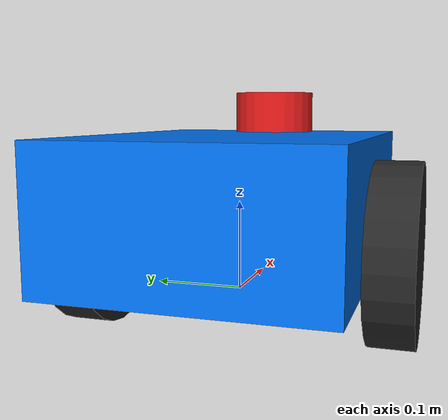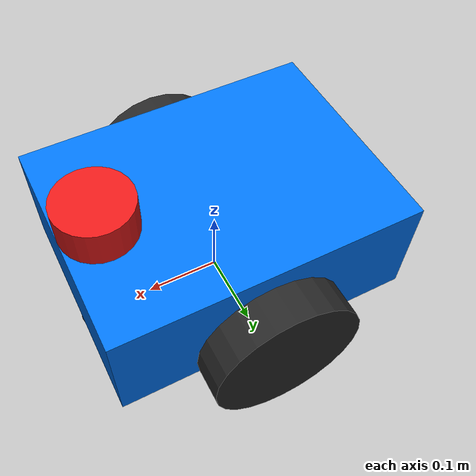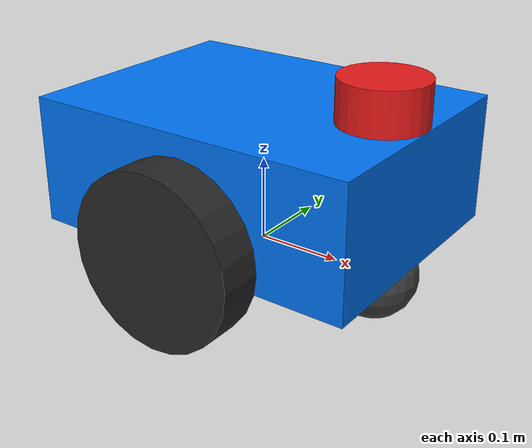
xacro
<?xml version="1.0"?>
<robot name="explore_bot" xmlns:xacro="http://ros.org/wiki/xacro">

  <!-- Argument passed from the launch file (e.g., robot1, robot2) -->
  <xacro:arg name="robot_name" default="robot1"/>
  <xacro:property name="prefix" value="$(arg robot_name)/" />

  <!-- Robot-specific chassis color -->
  <xacro:if value="${'$(arg robot_name)' == 'robot1'}">
    <xacro:property name="body_rgba" value="0.0 0.45 0.95 1.0" />  <!-- Vibrant Blue for Robot 1 -->
    <xacro:property name="gazebo_color" value="Gazebo/Blue" />
  </xacro:if>
  <xacro:unless value="${'$(arg robot_name)' == 'robot1'}">
    <xacro:property name="body_rgba" value="0.95 0.4 0.05 1.0" />  <!-- Vibrant Orange for Robot 2 -->
    <xacro:property name="gazebo_color" value="Gazebo/Orange" />
  </xacro:unless>

  <!-- 1. BASE GEOMETRY & FRAMES                      -->
  <link name="${prefix}base_footprint"/>

  <joint name="${prefix}base_joint" type="fixed">
    <parent link="${prefix}base_footprint"/>
    <child link="${prefix}base_link"/>
    <origin xyz="0 0 0.1" rpy="0 0 0"/>
  </joint>

  <link name="${prefix}base_link">
    <visual>
      <geometry><box size="0.4 0.3 0.15"/></geometry>
      <material name="${prefix}body_mat">
        <color rgba="${body_rgba}"/>
      </material>
    </visual>
    <collision>
      <geometry><box size="0.4 0.3 0.15"/></geometry>
    </collision>
    <inertial>
      <mass value="5.0"/>
      <inertia ixx="0.05" ixy="0.0" ixz="0.0" iyy="0.08" iyz="0.0" izz="0.1"/>
    </inertial>
  </link>

  <!-- 2. WHEELS                                      -->
  <!-- Left Wheel -->
  <link name="${prefix}left_wheel">
    <visual>
      <geometry><cylinder radius="0.1" length="0.05"/></geometry>
      <material name="${prefix}wheel_mat">
        <color rgba="0.15 0.15 0.15 1.0"/>
      </material>
    </visual>
    <collision><geometry><cylinder radius="0.1" length="0.05"/></geometry></collision>
    <inertial><mass value="0.5"/><inertia ixx="0.001" ixy="0" ixz="0" iyy="0.001" iyz="0" izz="0.002"/></inertial>
  </link>
  <joint name="${prefix}left_wheel_joint" type="continuous">
    <parent link="${prefix}base_link"/>
    <child link="${prefix}left_wheel"/>
    <origin xyz="0 0.175 -0.05" rpy="-1.5707 0 0"/>
    <axis xyz="0 0 1"/>
  </joint>

  <!-- Right Wheel -->
  <link name="${prefix}right_wheel">
    <visual>
      <geometry><cylinder radius="0.1" length="0.05"/></geometry>
      <material name="${prefix}wheel_mat">
        <color rgba="0.15 0.15 0.15 1.0"/>
      </material>
    </visual>
    <collision><geometry><cylinder radius="0.1" length="0.05"/></geometry></collision>
    <inertial><mass value="0.5"/><inertia ixx="0.001" ixy="0" ixz="0" iyy="0.001" iyz="0" izz="0.002"/></inertial>
  </link>
  <joint name="${prefix}right_wheel_joint" type="continuous">
    <parent link="${prefix}base_link"/>
    <child link="${prefix}right_wheel"/>
    <origin xyz="0 -0.175 -0.05" rpy="-1.5707 0 0"/>
    <axis xyz="0 0 1"/>
  </joint>

  <!-- Caster Wheel -->
  <link name="${prefix}caster_wheel">
    <visual>
      <geometry><sphere radius="0.05"/></geometry>
      <material name="${prefix}caster_mat">
        <color rgba="0.25 0.25 0.25 1.0"/>
      </material>
    </visual>
    <collision><geometry><sphere radius="0.05"/></geometry></collision>
    <inertial><mass value="0.1"/><inertia ixx="0.0001" ixy="0" ixz="0" iyy="0.0001" iyz="0" izz="0.0001"/></inertial>
  </link>
  <joint name="${prefix}caster_joint" type="fixed">
    <parent link="${prefix}base_link"/>
    <child link="${prefix}caster_wheel"/>
    <origin xyz="0.15 0 -0.1" rpy="0 0 0"/>
  </joint>

  <!-- 3. LIDAR SENSOR                                -->
  <link name="${prefix}lidar_link">
    <visual>
      <geometry><cylinder radius="0.05" length="0.05"/></geometry>
      <material name="${prefix}lidar_mat">
        <color rgba="0.9 0.1 0.1 1.0"/>
      </material>
    </visual>
  </link>
  <joint name="${prefix}lidar_joint" type="fixed">
    <parent link="${prefix}base_link"/>
    <child link="${prefix}lidar_link"/>
    <origin xyz="0.15 0 0.1" rpy="0 0 0"/>
  </joint>

  <!-- 4. GAZEBO PLUGINS (The critical multi-agent part)-->
  <gazebo>
    <plugin name="$(arg robot_name)_diff_drive" filename="libgazebo_ros_diff_drive.so">
      <ros>
        <namespace>/$(arg robot_name)</namespace>
        <!-- Keep every robot's prefixed frames on the global TF graph. -->
        <remapping>tf:=/tf</remapping>
        <remapping>tf_static:=/tf_static</remapping>
      </ros>
      <update_rate>30</update_rate>
      <left_joint>${prefix}left_wheel_joint</left_joint>
      <right_joint>${prefix}right_wheel_joint</right_joint>
      <wheel_separation>0.35</wheel_separation>
      <wheel_diameter>0.2</wheel_diameter>

      <!-- TF Frames: This ensures odom and base_footprint belong to this specific bot -->
      <odometry_frame>${prefix}odom</odometry_frame>
      <robot_base_frame>${prefix}base_footprint</robot_base_frame>

      <publish_odom>true</publish_odom>
      <publish_odom_tf>true</publish_odom_tf>
      <publish_wheel_tf>false</publish_wheel_tf>
    </plugin>
  </gazebo>

  <gazebo>
    <plugin name="$(arg robot_name)_joint_state" filename="libgazebo_ros_joint_state_publisher.so">
      <ros>
        <namespace>/$(arg robot_name)</namespace>
      </ros>
      <update_rate>30</update_rate>
      <joint_name>${prefix}left_wheel_joint</joint_name>
      <joint_name>${prefix}right_wheel_joint</joint_name>
    </plugin>
  </gazebo>

  <gazebo reference="${prefix}lidar_link">
    <sensor type="ray" name="$(arg robot_name)_lidar_sensor">
      <pose>0 0 0 0 0 0</pose>
      <visualize>false</visualize>
      <update_rate>10</update_rate>
      <ray>
        <scan>
          <horizontal><samples>360</samples><resolution>1</resolution><min_angle>-3.14</min_angle><max_angle>3.14</max_angle></horizontal>
        </scan>
        <range><min>0.3</min><max>12.0</max></range>
      </ray>
      <plugin name="$(arg robot_name)_lidar_plugin" filename="libgazebo_ros_ray_sensor.so">
        <ros>
          <!-- Isolates the scan topic (e.g., /robot1/scan) -->
          <namespace>/$(arg robot_name)</namespace>
          <remapping>~/out:=scan</remapping>
        </ros>
        <output_type>sensor_msgs/LaserScan</output_type>
        <!-- Crucial: Tells the laser scan which bot's frame to attach to -->
        <frame_name>${prefix}lidar_link</frame_name>
      </plugin>
    </sensor>
  </gazebo>

  <!-- Gazebo Material Colors -->
  <gazebo reference="${prefix}base_link">
    <material>${gazebo_color}</material>
  </gazebo>
  <gazebo reference="${prefix}left_wheel">
    <material>Gazebo/FlatBlack</material>
  </gazebo>
  <gazebo reference="${prefix}right_wheel">
    <material>Gazebo/FlatBlack</material>
  </gazebo>
  <gazebo reference="${prefix}caster_wheel">
    <material>Gazebo/FlatBlack</material>
  </gazebo>
  <gazebo reference="${prefix}lidar_link">
    <material>Gazebo/Red</material>
  </gazebo>

</robot>
